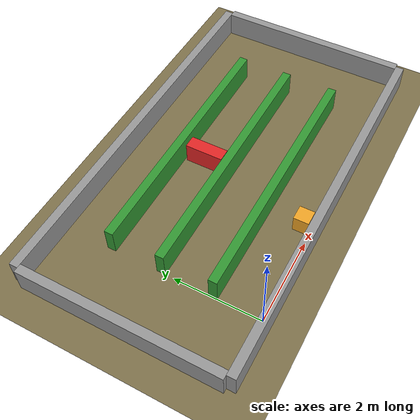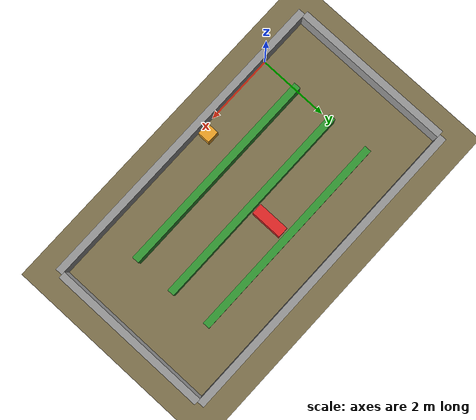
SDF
<?xml version="1.0" ?>
<sdf version="1.9">
  <world name="greenhouse">

    <physics name="1ms" type="ignored">
      <max_step_size>0.001</max_step_size>
      <real_time_factor>1.0</real_time_factor>
    </physics>

    <plugin filename="gz-sim-physics-system" name="gz::sim::systems::Physics"></plugin>
    <plugin filename="gz-sim-user-commands-system" name="gz::sim::systems::UserCommands"></plugin>
    <plugin filename="gz-sim-scene-broadcaster-system" name="gz::sim::systems::SceneBroadcaster"></plugin>
    <plugin filename="gz-sim-sensors-system" name="gz::sim::systems::Sensors">
      <render_engine>ogre2</render_engine>
    </plugin>
    <plugin filename="gz-sim-contact-system" name="gz::sim::systems::Contact"></plugin>

    <light type="directional" name="sun">
      <cast_shadows>true</cast_shadows>
      <pose>0 0 10 0 0 0</pose>
      <diffuse>0.8 0.8 0.8 1</diffuse>
      <specular>0.2 0.2 0.2 1</specular>
      <direction>-0.5 0.1 -0.9</direction>
    </light>

    <model name="ground_plane">
      <static>true</static>
      <pose>3.0 2.3000000000000003 0 0 0 0</pose>
      <link name="link">
        <collision name="collision">
          <geometry><plane><normal>0 0 1</normal><size>15.0 10.600000000000001</size></plane></geometry>
        </collision>
        <visual name="visual">
          <geometry><plane><normal>0 0 1</normal><size>15.0 10.600000000000001</size></plane></geometry>
          <material><ambient>0.4 0.35 0.2 1</ambient><diffuse>0.5 0.45 0.3 1</diffuse></material>
        </visual>
      </link>
    </model>

    <!--
      Generated from geometry_config.py - do not hand-edit corridor
      positions here. NUM_CORRIDORS=4, ROW_WIDTH=1.0m.
    -->

    <model name="divider_wall_1">
      <static>true</static>
      <pose>3.0 1.1 0.3 0 0 0</pose>
      <link name="link">
        <collision name="collision">
          <geometry><box><size>6.0 0.2 0.6</size></box></geometry>
        </collision>
        <visual name="visual">
          <geometry><box><size>6.0 0.2 0.6</size></box></geometry>
          <material><ambient>0.1 0.5 0.1 1</ambient><diffuse>0.2 0.6 0.2 1</diffuse></material>
        </visual>
      </link>
    </model>

    <model name="divider_wall_2">
      <static>true</static>
      <pose>3.0 2.3000000000000003 0.3 0 0 0</pose>
      <link name="link">
        <collision name="collision">
          <geometry><box><size>6.0 0.2 0.6</size></box></geometry>
        </collision>
        <visual name="visual">
          <geometry><box><size>6.0 0.2 0.6</size></box></geometry>
          <material><ambient>0.1 0.5 0.1 1</ambient><diffuse>0.2 0.6 0.2 1</diffuse></material>
        </visual>
      </link>
    </model>

    <model name="divider_wall_3">
      <static>true</static>
      <pose>3.0 3.5000000000000004 0.3 0 0 0</pose>
      <link name="link">
        <collision name="collision">
          <geometry><box><size>6.0 0.2 0.6</size></box></geometry>
        </collision>
        <visual name="visual">
          <geometry><box><size>6.0 0.2 0.6</size></box></geometry>
          <material><ambient>0.1 0.5 0.1 1</ambient><diffuse>0.2 0.6 0.2 1</diffuse></material>
        </visual>
      </link>
    </model>

    <model name="boundary_south">
      <static>true</static>
      <pose>3.0 -0.1 0.3 0 0 0</pose>
      <link name="link">
        <collision name="collision">
          <geometry><box><size>9.0 0.2 0.6</size></box></geometry>
        </collision>
        <visual name="visual">
          <geometry><box><size>9.0 0.2 0.6</size></box></geometry>
          <material><ambient>0.5 0.5 0.5 1</ambient><diffuse>0.6 0.6 0.6 1</diffuse></material>
        </visual>
      </link>
    </model>

    <model name="boundary_north">
      <static>true</static>
      <pose>3.0 4.7 0.3 0 0 0</pose>
      <link name="link">
        <collision name="collision">
          <geometry><box><size>9.0 0.2 0.6</size></box></geometry>
        </collision>
        <visual name="visual">
          <geometry><box><size>9.0 0.2 0.6</size></box></geometry>
          <material><ambient>0.5 0.5 0.5 1</ambient><diffuse>0.6 0.6 0.6 1</diffuse></material>
        </visual>
      </link>
    </model>

    <model name="boundary_west">
      <static>true</static>
      <pose>-1.5 2.3000000000000003 0.3 0 0 0</pose>
      <link name="link">
        <collision name="collision">
          <geometry><box><size>0.2 4.6000000000000005 0.6</size></box></geometry>
        </collision>
        <visual name="visual">
          <geometry><box><size>0.2 4.6000000000000005 0.6</size></box></geometry>
          <material><ambient>0.5 0.5 0.5 1</ambient><diffuse>0.6 0.6 0.6 1</diffuse></material>
        </visual>
      </link>
    </model>

    <model name="boundary_east">
      <static>true</static>
      <pose>7.5 2.3000000000000003 0.3 0 0 0</pose>
      <link name="link">
        <collision name="collision">
          <geometry><box><size>0.2 4.6000000000000005 0.6</size></box></geometry>
        </collision>
        <visual name="visual">
          <geometry><box><size>0.2 4.6000000000000005 0.6</size></box></geometry>
          <material><ambient>0.5 0.5 0.5 1</ambient><diffuse>0.6 0.6 0.6 1</diffuse></material>
        </visual>
      </link>
    </model>

    <model name="row_blockage">
      <static>true</static>
      <pose>3.0 2.9000000000000004 0.25 0 0 0</pose>
      <link name="link">
        <collision name="collision"><geometry><box><size>0.3 0.9 0.5</size></box></geometry></collision>
        <visual name="visual"><geometry><box><size>0.3 0.9 0.5</size></box></geometry>
          <material><ambient>0.8 0.1 0.1 1</ambient><diffuse>0.9 0.15 0.15 1</diffuse></material>
        </visual>
      </link>
    </model>

    <model name="partial_obstacle">
      <static>true</static>
      <pose>2.4000000000000004 0.22499999999999998 0.2 0 0 0</pose>
      <link name="link">
        <collision name="collision"><geometry><box><size>0.35 0.35 0.4</size></box></geometry></collision>
        <visual name="visual"><geometry><box><size>0.35 0.35 0.4</size></box></geometry>
          <material><ambient>0.85 0.55 0.1 1</ambient><diffuse>0.95 0.65 0.15 1</diffuse></material>
        </visual>
      </link>
    </model>

  </world>
</sdf>
